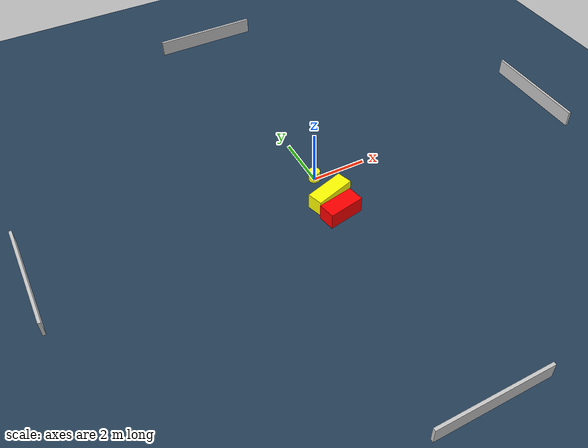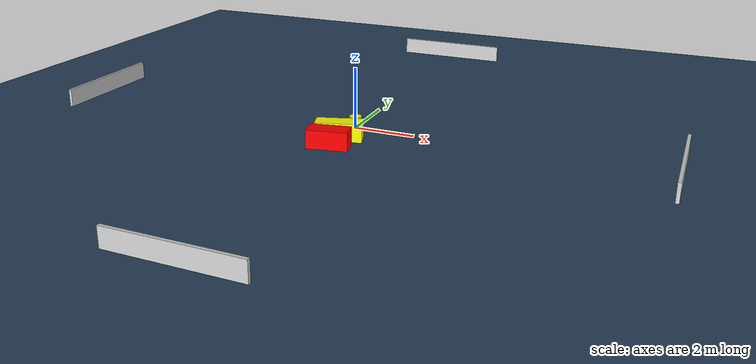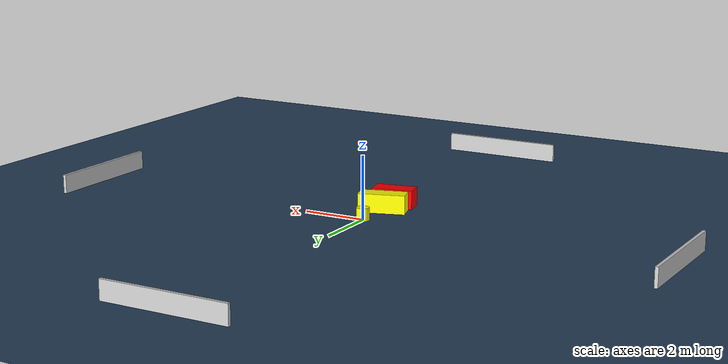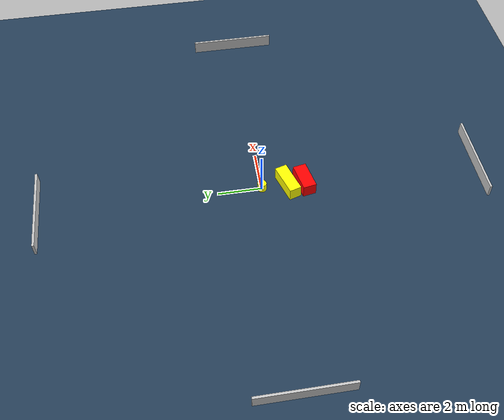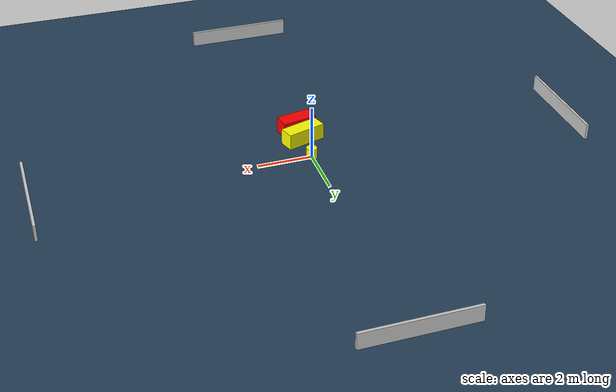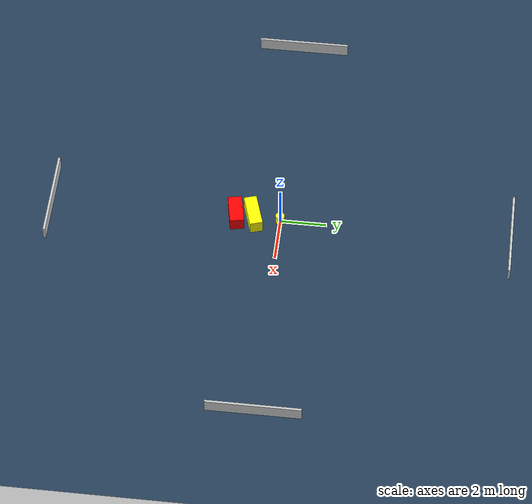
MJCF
<?xml version="1.0" ?>
<mujoco model="generated_environment">
  <option timestep="0.01" integrator="RK4" cone="elliptic"/>
  <default>
    <geom density="1"/>
  </default>
  <asset>
    <texture builtin="gradient" height="3072" name="skybox" rgb1="0.3 0.5 0.7" rgb2="0 0 0" type="skybox" width="512"/>
    <texture builtin="checker" height="300" name="groundplane" rgb1="0.2 0.3 0.4" rgb2="0.1 0.2 0.3" type="2d" width="300"/>
    <material name="groundplane" reflectance="0.2" texrepeat="5 5" texture="groundplane"/>
  </asset>
  <worldbody>
    <light dir="0 0 -1" directional="true" pos="0 0 1.5"/>
    <geom condim="3" friction="0.5 0.005 0.001" material="groundplane" name="floor" pos="0 0 0" size="0 0 0.05" type="plane"/>
    <body name="walls">
      <geom name="wall_1" condim="4" pos="-10.0 0.0 0.3" rgba="0.800000011920929 0.800000011920929 0.800000011920929 1.0" size="0.05 2.0 0.3" type="box"/>
      <geom name="wall_2" condim="4" pos="10.0 0.0 0.3" rgba="0.800000011920929 0.800000011920929 0.800000011920929 1.0" size="0.05 2.0 0.3" type="box"/>
      <geom name="wall_3" condim="4" pos="0.0 -10.0 0.3" rgba="0.800000011920929 0.800000011920929 0.800000011920929 1.0" size="2.0 0.05 0.3" type="box"/>
      <geom name="wall_4" condim="4" pos="0.0 10.0 0.3" rgba="0.800000011920929 0.800000011920929 0.800000011920929 1.0" size="2.0 0.05 0.3" type="box"/>
    </body>
    <body name="robot">
      <joint name="joint_x" type="slide" pos="0 0 0" axis="1 0 0"/>
      <joint name="joint_y" type="slide" pos="0 0 0" axis="0 1 0"/>
      <geom name="robot" type="cylinder" pos="0.0 0.0 0.2" size="0.2 0.2 0.0" mass="5.0" friction="1.0 0.005 0.0001" condim="4" rgba="1.0 1.0 0.0 1.0"/>
    </body>
    <body name="obstacle_1_movable">
      <geom name="obstacle_1_movable" condim="4" pos="-0.03913461056470367 -1.1773194829618614 0.3" euler="0 0 17.102433910041825" friction="0.0 0.005 0.001" rgba="1.0 1.0 0.0 1.0" size="0.7387325765900805 0.28007262156006957 0.3" type="box" mass="0.1"/>
      <joint type="free"/>
    </body>
    <body name="obstacle_2_static">
      <geom name="obstacle_2_static" condim="4" pos="-0.033724693039832145 -1.9345800406541311 0.3" euler="0 0 280.85058340768455" friction="0.0 0.005 0.001" rgba="1.0 0.0 0.0 1.0" size="0.30548269712471715 0.6514447543798677 0.3" type="box"/>
    </body>
  </worldbody>
  <actuator>
    <motor name="actuator_x" joint="joint_x" gear="1" ctrlrange="-1 1"/>
    <motor name="actuator_y" joint="joint_y" gear="1" ctrlrange="-1 1"/>
  </actuator>
</mujoco>
